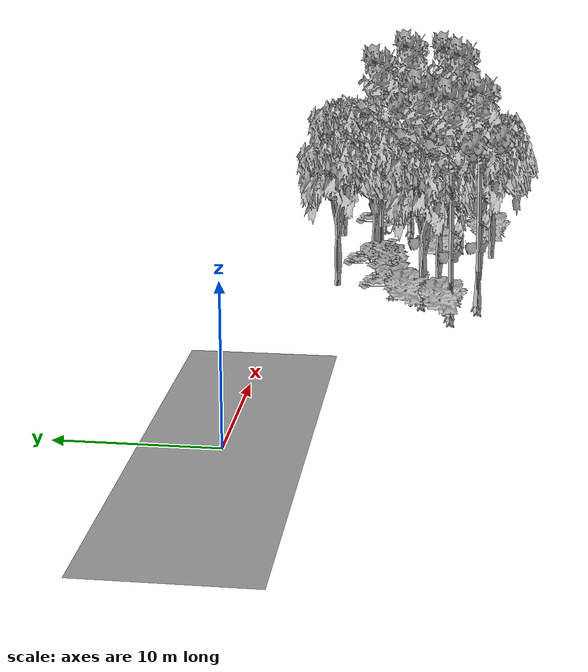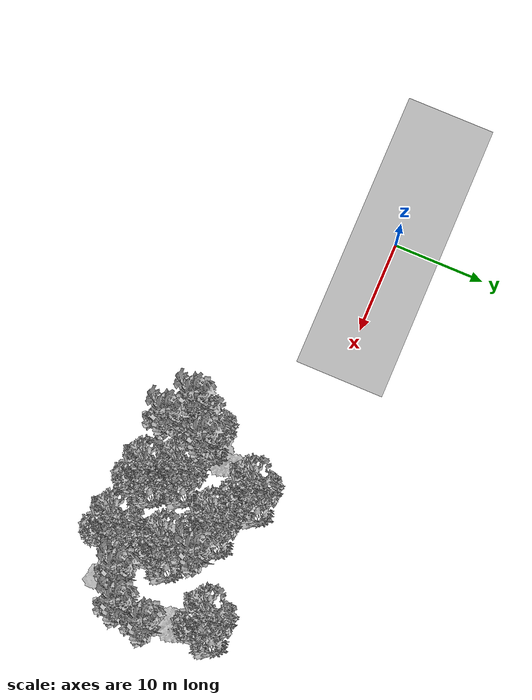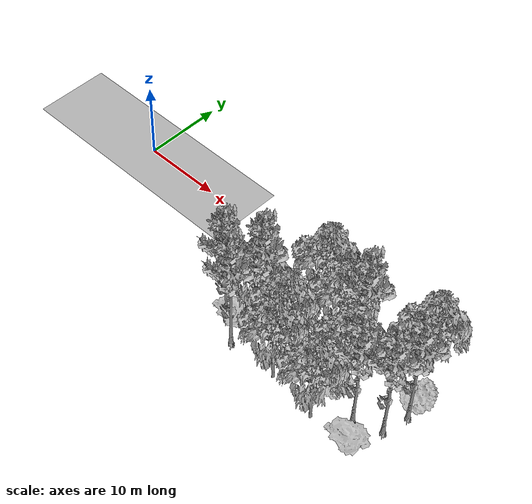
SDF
<sdf version="1.7">
 <world name="default">
  <model name="ground_plane">
   <static>1</static>
   <link name="link">
    <collision name="collision">
     <pose>-50 0 0 0 -0 0</pose>
     <geometry><plane><normal>0 0 1</normal><size>100 100</size></plane></geometry>
     <surface><contact><ode><min_depth>0.01</min_depth><max_vel>0</max_vel></ode></contact></surface>
    </collision>
    <visual name="grass">
     <cast_shadows>0</cast_shadows>
     <geometry>
      <mesh>
       <scale>0.5814285714285714 0.18142857142857144 0.1</scale>
       <uri>file://grass_plane/meshes/grass_plane.dae</uri>
      </mesh>
     </geometry>
    </visual>
   </link>
  </model>
  <model name="Tree 3">
   <static>1</static>
   <pose>27.00765666073883 -9.12259556007964 0 1.57079 -0 0</pose>
   <link name="link">
    <collision name="collision">
     <geometry><mesh><scale>3 2 3</scale><uri>model://tree_3/meshes/tree_3.obj</uri></mesh></geometry>
    </collision>
    <visual name="visual">
     <geometry><mesh><scale>3 2 3</scale><uri>model://tree_3/meshes/tree_3.obj</uri></mesh></geometry>
    </visual>
   </link>
  </model>
  <model name="Tree 20">
   <static>1</static>
   <pose>46.024011212950896 -11.057480264774966 0 1.57079 -0 0</pose>
   <link name="link">
    <collision name="collision">
     <geometry><mesh><scale>3.5 5 3.5</scale><uri>model://tree_9/meshes/tree_9.obj</uri></mesh></geometry>
    </collision>
    <visual name="visual">
     <geometry><mesh><scale>3.5 5 3.5</scale><uri>model://tree_9/meshes/tree_9.obj</uri></mesh></geometry>
    </visual>
   </link>
  </model>
  <model name="Tree 24">
   <static>1</static>
   <pose>28.347638143475976 -7.713547740371126 0 1.57079 -0 0</pose>
   <link name="link">
    <collision name="collision">
     <geometry><mesh><scale>4 2.5 4</scale><uri>model://tree_1/meshes/tree_1.obj</uri></mesh></geometry>
    </collision>
    <visual name="visual">
     <geometry><mesh><scale>4 2.5 4</scale><uri>model://tree_1/meshes/tree_1.obj</uri></mesh></geometry>
    </visual>
   </link>
  </model>
  <model name="Tree 32">
   <static>1</static>
   <pose>44.138661586826174 -14.741700780972689 0 1.57079 -0 0</pose>
   <link name="link">
    <collision name="collision">
     <geometry><mesh><scale>3 2 3</scale><uri>model://tree_3/meshes/tree_3.obj</uri></mesh></geometry>
    </collision>
    <visual name="visual">
     <geometry><mesh><scale>3 2 3</scale><uri>model://tree_3/meshes/tree_3.obj</uri></mesh></geometry>
    </visual>
   </link>
  </model>
  <model name="Tree 37">
   <static>1</static>
   <pose>27.978852720871515 -9.820839608483986 0 1.57079 -0 0</pose>
   <link name="link">
    <collision name="collision">
     <geometry><mesh><scale>3.5 5 3.5</scale><uri>model://tree_9/meshes/tree_9.obj</uri></mesh></geometry>
    </collision>
    <visual name="visual">
     <geometry><mesh><scale>3.5 5 3.5</scale><uri>model://tree_9/meshes/tree_9.obj</uri></mesh></geometry>
    </visual>
   </link>
  </model>
  <model name="Tree 53">
   <static>1</static>
   <pose>35.524378009989675 -5.801586959883627 0 1.57079 -0 0</pose>
   <link name="link">
    <collision name="collision">
     <geometry><mesh><scale>3.5 5 3.5</scale><uri>model://tree_2/meshes/tree_2.obj</uri></mesh></geometry>
    </collision>
    <visual name="visual">
     <geometry><mesh><scale>3.5 5 3.5</scale><uri>model://tree_2/meshes/tree_2.obj</uri></mesh></geometry>
    </visual>
   </link>
  </model>
  <model name="Tree 65">
   <static>1</static>
   <pose>46.16551400666343 -5.816074616063924 0 1.57079 -0 0</pose>
   <link name="link">
    <collision name="collision">
     <geometry><mesh><scale>4 2.5 4</scale><uri>model://tree_1/meshes/tree_1.obj</uri></mesh></geometry>
    </collision>
    <visual name="visual">
     <geometry><mesh><scale>4 2.5 4</scale><uri>model://tree_1/meshes/tree_1.obj</uri></mesh></geometry>
    </visual>
   </link>
  </model>
  <model name="Tree 66">
   <static>1</static>
   <pose>46.71480700248698 -7.933945639537398 0 1.57079 -0 0</pose>
   <link name="link">
    <collision name="collision">
     <geometry><mesh><scale>3.5 5 3.5</scale><uri>model://tree_9/meshes/tree_9.obj</uri></mesh></geometry>
    </collision>
    <visual name="visual">
     <geometry><mesh><scale>3.5 5 3.5</scale><uri>model://tree_9/meshes/tree_9.obj</uri></mesh></geometry>
    </visual>
   </link>
  </model>
  <model name="Tree 79">
   <static>1</static>
   <pose>30.943387644754026 -3.331374044521896 0 1.57079 -0 0</pose>
   <link name="link">
    <collision name="collision">
     <geometry><mesh><scale>3.5 5 3.5</scale><uri>model://tree_2/meshes/tree_2.obj</uri></mesh></geometry>
    </collision>
    <visual name="visual">
     <geometry><mesh><scale>3.5 5 3.5</scale><uri>model://tree_2/meshes/tree_2.obj</uri></mesh></geometry>
    </visual>
   </link>
  </model>
  <model name="Tree 83">
   <static>1</static>
   <pose>33.38656579265961 -13.984344932053128 0 1.57079 -0 0</pose>
   <link name="link">
    <collision name="collision">
     <geometry><mesh><scale>3.5 5 3.5</scale><uri>model://tree_2/meshes/tree_2.obj</uri></mesh></geometry>
    </collision>
    <visual name="visual">
     <geometry><mesh><scale>3.5 5 3.5</scale><uri>model://tree_2/meshes/tree_2.obj</uri></mesh></geometry>
    </visual>
   </link>
  </model>
  <model name="Tree 84">
   <static>1</static>
   <pose>27.04116786220216 -10.006347477446006 0 1.57079 -0 0</pose>
   <link name="link">
    <collision name="collision">
     <geometry><mesh><scale>3.5 5 3.5</scale><uri>model://tree_2/meshes/tree_2.obj</uri></mesh></geometry>
    </collision>
    <visual name="visual">
     <geometry><mesh><scale>3.5 5 3.5</scale><uri>model://tree_2/meshes/tree_2.obj</uri></mesh></geometry>
    </visual>
   </link>
  </model>
  <model name="Tree 87">
   <static>1</static>
   <pose>25.07646123322276 -11.656225603260632 0 1.57079 -0 0</pose>
   <link name="link">
    <collision name="collision">
     <geometry><mesh><scale>3 2 3</scale><uri>model://tree_3/meshes/tree_3.obj</uri></mesh></geometry>
    </collision>
    <visual name="visual">
     <geometry><mesh><scale>3 2 3</scale><uri>model://tree_3/meshes/tree_3.obj</uri></mesh></geometry>
    </visual>
   </link>
  </model>
  <model name="Tree 97">
   <static>1</static>
   <pose>39.465429394497946 -14.866756817112798 0 1.57079 -0 0</pose>
   <link name="link">
    <collision name="collision">
     <geometry><mesh><scale>3.5 5 3.5</scale><uri>model://tree_2/meshes/tree_2.obj</uri></mesh></geometry>
    </collision>
    <visual name="visual">
     <geometry><mesh><scale>3.5 5 3.5</scale><uri>model://tree_2/meshes/tree_2.obj</uri></mesh></geometry>
    </visual>
   </link>
  </model>
  <model name="Tree 109">
   <static>1</static>
   <pose>44.65482322218739 -2.4312525458009695 0 1.57079 -0 0</pose>
   <link name="link">
    <collision name="collision">
     <geometry><mesh><scale>3.5 5 3.5</scale><uri>model://tree_2/meshes/tree_2.obj</uri></mesh></geometry>
    </collision>
    <visual name="visual">
     <geometry><mesh><scale>3.5 5 3.5</scale><uri>model://tree_2/meshes/tree_2.obj</uri></mesh></geometry>
    </visual>
   </link>
  </model>
  <model name="Tree 110">
   <static>1</static>
   <pose>38.60460610121011 -6.023936948614889 0 1.57079 -0 0</pose>
   <link name="link">
    <collision name="collision">
     <geometry><mesh><scale>3.5 5 3.5</scale><uri>model://tree_9/meshes/tree_9.obj</uri></mesh></geometry>
    </collision>
    <visual name="visual">
     <geometry><mesh><scale>3.5 5 3.5</scale><uri>model://tree_9/meshes/tree_9.obj</uri></mesh></geometry>
    </visual>
   </link>
  </model>
  <model name="Tree 121">
   <static>1</static>
   <pose>34.03649629953563 -5.982253049523383 0 1.57079 -0 0</pose>
   <link name="link">
    <collision name="collision">
     <geometry><mesh><scale>4 2.5 4</scale><uri>model://tree_1/meshes/tree_1.obj</uri></mesh></geometry>
    </collision>
    <visual name="visual">
     <geometry><mesh><scale>4 2.5 4</scale><uri>model://tree_1/meshes/tree_1.obj</uri></mesh></geometry>
    </visual>
   </link>
  </model>
  <model name="Tree 143">
   <static>1</static>
   <pose>27.302415803237352 -13.974272536160822 0 1.57079 -0 0</pose>
   <link name="link">
    <collision name="collision">
     <geometry><mesh><scale>3.5 5 3.5</scale><uri>model://tree_9/meshes/tree_9.obj</uri></mesh></geometry>
    </collision>
    <visual name="visual">
     <geometry><mesh><scale>3.5 5 3.5</scale><uri>model://tree_9/meshes/tree_9.obj</uri></mesh></geometry>
    </visual>
   </link>
  </model>
  <model name="Tree 167">
   <static>1</static>
   <pose>34.5321135706112 -6.416101540858069 0 1.57079 -0 0</pose>
   <link name="link">
    <collision name="collision">
     <geometry><mesh><scale>4 2.5 4</scale><uri>model://tree_1/meshes/tree_1.obj</uri></mesh></geometry>
    </collision>
    <visual name="visual">
     <geometry><mesh><scale>4 2.5 4</scale><uri>model://tree_1/meshes/tree_1.obj</uri></mesh></geometry>
    </visual>
   </link>
  </model>
  <model name="Tree 168">
   <static>1</static>
   <pose>42.99928222977739 -12.257702909529357 0 1.57079 -0 0</pose>
   <link name="link">
    <collision name="collision">
     <geometry><mesh><scale>3.5 5 3.5</scale><uri>model://tree_9/meshes/tree_9.obj</uri></mesh></geometry>
    </collision>
    <visual name="visual">
     <geometry><mesh><scale>3.5 5 3.5</scale><uri>model://tree_9/meshes/tree_9.obj</uri></mesh></geometry>
    </visual>
   </link>
  </model>
  <model name="Tree 169">
   <static>1</static>
   <pose>38.79219128241016 -10.881774273257136 0 1.57079 -0 0</pose>
   <link name="link">
    <collision name="collision">
     <geometry><mesh><scale>3 2 3</scale><uri>model://tree_3/meshes/tree_3.obj</uri></mesh></geometry>
    </collision>
    <visual name="visual">
     <geometry><mesh><scale>3 2 3</scale><uri>model://tree_3/meshes/tree_3.obj</uri></mesh></geometry>
    </visual>
   </link>
  </model>
  <model name="Tree 170">
   <static>1</static>
   <pose>39.60521552701414 -9.457920987931386 0 1.57079 -0 0</pose>
   <link name="link">
    <collision name="collision">
     <geometry><mesh><scale>3.5 5 3.5</scale><uri>model://tree_2/meshes/tree_2.obj</uri></mesh></geometry>
    </collision>
    <visual name="visual">
     <geometry><mesh><scale>3.5 5 3.5</scale><uri>model://tree_2/meshes/tree_2.obj</uri></mesh></geometry>
    </visual>
   </link>
  </model>
  <model name="Tree 171">
   <static>1</static>
   <pose>24.674679662838585 -12.084230802268277 0 1.57079 -0 0</pose>
   <link name="link">
    <collision name="collision">
     <geometry><mesh><scale>3.5 5 3.5</scale><uri>model://tree_9/meshes/tree_9.obj</uri></mesh></geometry>
    </collision>
    <visual name="visual">
     <geometry><mesh><scale>3.5 5 3.5</scale><uri>model://tree_9/meshes/tree_9.obj</uri></mesh></geometry>
    </visual>
   </link>
  </model>
  <model name="Tree 178">
   <static>1</static>
   <pose>32.08169313681398 -10.936894815229653 0 1.57079 -0 0</pose>
   <link name="link">
    <collision name="collision">
     <geometry><mesh><scale>3.5 5 3.5</scale><uri>model://tree_2/meshes/tree_2.obj</uri></mesh></geometry>
    </collision>
    <visual name="visual">
     <geometry><mesh><scale>3.5 5 3.5</scale><uri>model://tree_2/meshes/tree_2.obj</uri></mesh></geometry>
    </visual>
   </link>
  </model>
 </world>
</sdf>
